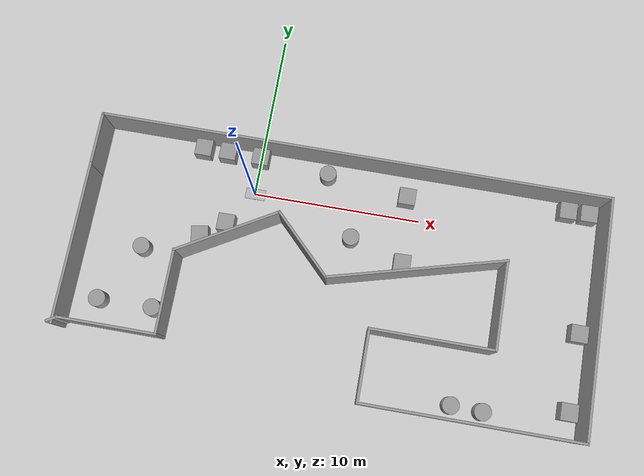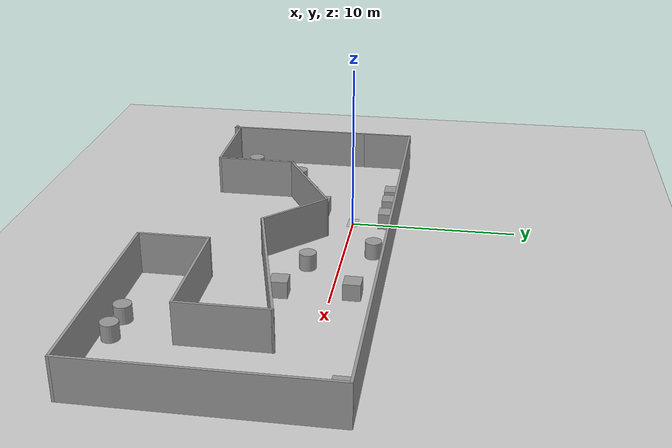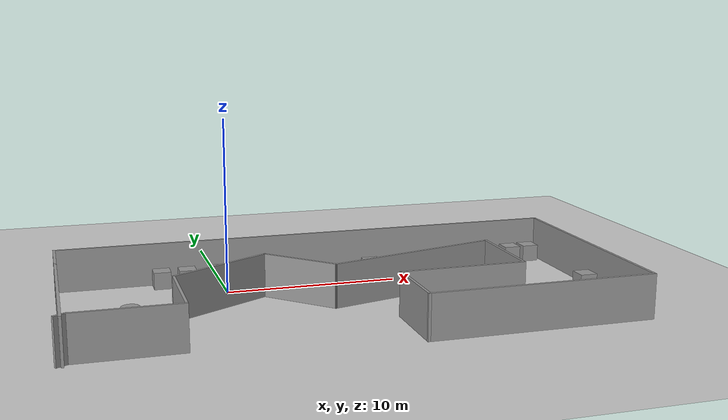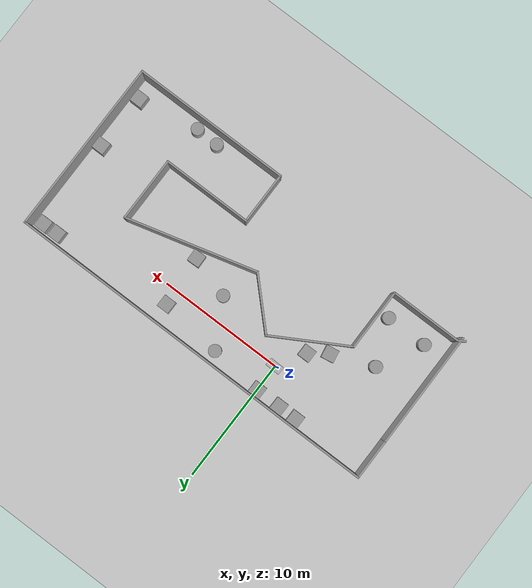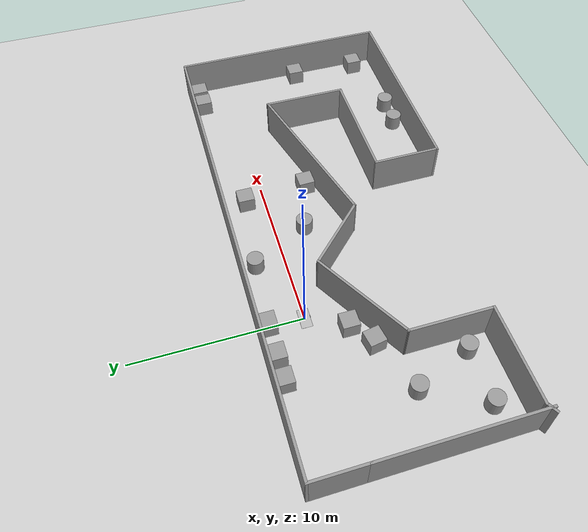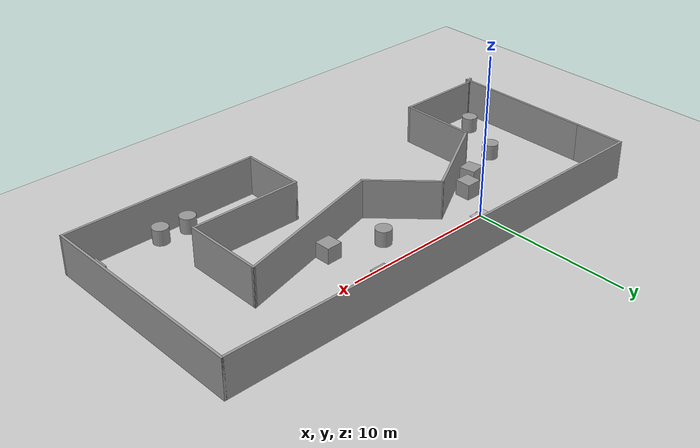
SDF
<sdf version="1.6">
 <world name="default">
  <light name="sun" type="directional">
   <pose>0 0 10 0 -0 0</pose>
   <diffuse>0.8 0.8 0.8 1</diffuse>
   <specular>0.2 0.2 0.2 1</specular>
   <attenuation>
    <range>1000</range>
    <constant>0.9</constant>
    <linear>0.01</linear>
    <quadratic>0.001</quadratic>
   </attenuation>
   <direction>-0.5 0.1 -0.9</direction>
  </light>
  <model name="ground_plane">
   <static>1</static>
   <link name="link">
    <collision name="collision">
     <geometry><plane><normal>0 0 1</normal><size>100 100</size></plane></geometry>
     <surface>
      <contact><collide_bitmask>65535</collide_bitmask></contact>
      <friction><ode><mu>100</mu><mu2>50</mu2></ode></friction>
     </surface>
    </collision>
    <visual name="visual">
     <cast_shadows>0</cast_shadows>
     <geometry><plane><normal>0 0 1</normal><size>100 100</size></plane></geometry>
     <material>
      <script><uri>file://media/materials/scripts/gazebo.material</uri><name>Gazebo/Grey</name></script>
     </material>
    </visual>
   </link>
  </model>
  <gravity>0 0 -9.8</gravity>
  <magnetic_field>6e-06 2.3e-05 -4.2e-05</magnetic_field>
  <atmosphere type="adiabatic"/>
  <physics name="default_physics" default="0" type="ode">
   <max_step_size>0.001</max_step_size>
   <real_time_factor>1</real_time_factor>
   <real_time_update_rate>1000</real_time_update_rate>
  </physics>
  <scene><ambient>0.4 0.4 0.4 1</ambient><background>0.7 0.7 0.7 1</background><shadows>1</shadows></scene>
  <audio><device>default</device></audio>
  <spherical_coordinates>
   <surface_model>EARTH_WGS84</surface_model>
   <latitude_deg>0</latitude_deg>
   <longitude_deg>0</longitude_deg>
   <elevation>0</elevation>
   <heading_deg>0</heading_deg>
  </spherical_coordinates>
  <model name="kbot">
   <link name="base_footprint">
    <inertial>
     <pose>0.00043 0 0.025563 0 -0 0</pose>
     <mass>30.2</mass>
     <inertia>
      <ixx>0.391147</ixx>
      <ixy>0</ixy>
      <ixz>-0.00109768</ixz>
      <iyy>1.59189</iyy>
      <iyz>0</iyz>
      <izz>1.20097</izz>
     </inertia>
    </inertial>
    <collision name="base_footprint_fixed_joint_lump__base_link_collision">
     <pose>0 0 0.075 0 -0 0</pose>
     <geometry><box><size>1.2 0.65 0.01</size></box></geometry>
    </collision>
    <collision name="base_footprint_fixed_joint_lump__sensor_laser_collision_1">
     <pose>0.065 0 0.11 0 -0 0</pose>
     <geometry><box><size>0.03 0.03 0.04</size></box></geometry>
    </collision>
    <visual name="base_footprint_visual"><geometry><box><size>0.001 0.001 0.001</size></box></geometry></visual>
    <visual name="base_footprint_fixed_joint_lump__base_link_visual_1">
     <pose>0 0 0.075 0 -0 0</pose>
     <geometry><box><size>1.2 0.65 0.01</size></box></geometry>
    </visual>
    <visual name="base_footprint_fixed_joint_lump__sensor_laser_visual_2">
     <pose>0.065 0 0.11 0 -0 0</pose>
     <geometry>
      <mesh>
       <scale>1 1 1</scale>
       <uri>/home/antonino/Desktop/chapter-02/src/kbot_description/meshes/hokuyo.dae</uri>
      </mesh>
     </geometry>
     <material><script><uri>__default__</uri><name>__default__</name></script></material>
    </visual>
    <sensor name="laser_sensor" type="ray">
     <visualize>1</visualize>
     <update_rate>40</update_rate>
     <ray>
      <scan>
       <horizontal>
        <samples>720</samples>
        <resolution>1</resolution>
        <min_angle>-3.14</min_angle>
        <max_angle>3.14</max_angle>
       </horizontal>
       <vertical><samples>1</samples><min_angle>0</min_angle><max_angle>0</max_angle></vertical>
      </scan>
      <range><min>0.75</min><max>30</max><resolution>0.01</resolution></range>
      <noise><type>gaussian</type><mean>0</mean><stddev>0.01</stddev></noise>
     </ray>
     <plugin name="laser_controller" filename="libgazebo_ros_laser.so">
      <topicName>/kbot/sensor_laser/scan</topicName>
      <frameName>sensor_laser</frameName>
      <robotNamespace>/</robotNamespace>
     </plugin>
     <pose>0.065 0 0.11 0 -0 0</pose>
    </sensor>
   </link>
   <link name="caster_wheel1">
    <pose>-0.5 0.2 0.04 0 -0 0</pose>
    <inertial>
     <mass>5</mass>
     <inertia><ixx>0.0018</ixx><ixy>0</ixy><ixz>0</ixz><iyy>0.0018</iyy><iyz>0</iyz><izz>0.0018</izz></inertia>
    </inertial>
    <collision name="caster_wheel1_collision">
     <geometry><sphere><radius>0.03</radius></sphere></geometry>
    </collision>
    <visual name="caster_wheel1_visual"><geometry><sphere><radius>0.03</radius></sphere></geometry></visual>
   </link>
   <joint name="caster_wheel_joint1" type="revolute">
    <child>caster_wheel1</child>
    <parent>base_footprint</parent>
    <axis>
     <xyz>1 0 0</xyz>
     <limit><lower>-1e+16</lower><upper>1e+16</upper></limit>
     <dynamics><spring_reference>0</spring_reference><spring_stiffness>0</spring_stiffness></dynamics>
     <use_parent_model_frame>1</use_parent_model_frame>
    </axis>
   </joint>
   <link name="caster_wheel2">
    <pose>-0.5 -0.2 0.04 0 -0 0</pose>
    <inertial>
     <mass>5</mass>
     <inertia><ixx>0.0018</ixx><ixy>0</ixy><ixz>0</ixz><iyy>0.0018</iyy><iyz>0</iyz><izz>0.0018</izz></inertia>
    </inertial>
    <collision name="caster_wheel2_collision">
     <geometry><sphere><radius>0.03</radius></sphere></geometry>
    </collision>
    <visual name="caster_wheel2_visual"><geometry><sphere><radius>0.03</radius></sphere></geometry></visual>
   </link>
   <joint name="caster_wheel_joint2" type="revolute">
    <child>caster_wheel2</child>
    <parent>base_footprint</parent>
    <axis>
     <xyz>1 0 0</xyz>
     <limit><lower>-1e+16</lower><upper>1e+16</upper></limit>
     <dynamics><spring_reference>0</spring_reference><spring_stiffness>0</spring_stiffness></dynamics>
     <use_parent_model_frame>1</use_parent_model_frame>
    </axis>
   </joint>
   <link name="caster_wheel3">
    <pose>0.5 0.2 0.04 0 -0 0</pose>
    <inertial>
     <mass>5</mass>
     <inertia><ixx>0.0018</ixx><ixy>0</ixy><ixz>0</ixz><iyy>0.0018</iyy><iyz>0</iyz><izz>0.0018</izz></inertia>
    </inertial>
    <collision name="caster_wheel3_collision">
     <geometry><sphere><radius>0.03</radius></sphere></geometry>
    </collision>
    <visual name="caster_wheel3_visual"><geometry><sphere><radius>0.03</radius></sphere></geometry></visual>
   </link>
   <joint name="caster_wheel_joint3" type="revolute">
    <child>caster_wheel3</child>
    <parent>base_footprint</parent>
    <axis>
     <xyz>1 0 0</xyz>
     <limit><lower>-1e+16</lower><upper>1e+16</upper></limit>
     <dynamics><spring_reference>0</spring_reference><spring_stiffness>0</spring_stiffness></dynamics>
     <use_parent_model_frame>1</use_parent_model_frame>
    </axis>
   </joint>
   <link name="caster_wheel4">
    <pose>0.5 -0.2 0.04 0 -0 0</pose>
    <inertial>
     <mass>5</mass>
     <inertia><ixx>0.0018</ixx><ixy>0</ixy><ixz>0</ixz><iyy>0.0018</iyy><iyz>0</iyz><izz>0.0018</izz></inertia>
    </inertial>
    <collision name="caster_wheel4_collision">
     <geometry><sphere><radius>0.03</radius></sphere></geometry>
    </collision>
    <visual name="caster_wheel4_visual"><geometry><sphere><radius>0.03</radius></sphere></geometry></visual>
   </link>
   <joint name="caster_wheel_joint4" type="revolute">
    <child>caster_wheel4</child>
    <parent>base_footprint</parent>
    <axis>
     <xyz>1 0 0</xyz>
     <limit><lower>-1e+16</lower><upper>1e+16</upper></limit>
     <dynamics><spring_reference>0</spring_reference><spring_stiffness>0</spring_stiffness></dynamics>
     <use_parent_model_frame>1</use_parent_model_frame>
    </axis>
   </joint>
   <link name="left_wheel">
    <pose>0.02 0.332 0.07 0 -0 0</pose>
    <inertial>
     <mass>10</mass>
     <inertia>
      <ixx>0.0122708</ixx>
      <ixy>0</ixy>
      <ixz>0</ixz>
      <iyy>0.0122708</iyy>
      <iyz>0</iyz>
      <izz>0.0245</izz>
     </inertia>
    </inertial>
    <collision name="left_wheel_collision">
     <pose>0 0 0 1.5708 -0 0</pose>
     <geometry><cylinder><length>0.005</length><radius>0.07</radius></cylinder></geometry>
    </collision>
    <visual name="left_wheel_visual">
     <pose>0 0 0 1.5708 -0 0</pose>
     <geometry><cylinder><length>0.005</length><radius>0.07</radius></cylinder></geometry>
    </visual>
   </link>
   <joint name="left_wheel_joint" type="revolute">
    <child>left_wheel</child>
    <parent>base_footprint</parent>
    <axis>
     <xyz>0 1 0</xyz>
     <limit><lower>-1e+16</lower><upper>1e+16</upper></limit>
     <dynamics><spring_reference>0</spring_reference><spring_stiffness>0</spring_stiffness></dynamics>
     <use_parent_model_frame>1</use_parent_model_frame>
    </axis>
   </joint>
   <link name="right_wheel">
    <pose>0.02 -0.332 0.07 0 -0 0</pose>
    <inertial>
     <mass>10</mass>
     <inertia>
      <ixx>0.0122708</ixx>
      <ixy>0</ixy>
      <ixz>0</ixz>
      <iyy>0.0122708</iyy>
      <iyz>0</iyz>
      <izz>0.0245</izz>
     </inertia>
    </inertial>
    <collision name="right_wheel_collision">
     <pose>0 0 0 1.5708 -0 0</pose>
     <geometry><cylinder><length>0.005</length><radius>0.07</radius></cylinder></geometry>
    </collision>
    <visual name="right_wheel_visual">
     <pose>0 0 0 1.5708 -0 0</pose>
     <geometry><cylinder><length>0.005</length><radius>0.07</radius></cylinder></geometry>
    </visual>
   </link>
   <joint name="right_wheel_joint" type="revolute">
    <child>right_wheel</child>
    <parent>base_footprint</parent>
    <axis>
     <xyz>0 1 0</xyz>
     <limit><lower>-1e+16</lower><upper>1e+16</upper></limit>
     <dynamics><spring_reference>0</spring_reference><spring_stiffness>0</spring_stiffness></dynamics>
     <use_parent_model_frame>1</use_parent_model_frame>
    </axis>
   </joint>
   <static>0</static>
   <plugin name="differential_drive_controller" filename="libgazebo_ros_diff_drive.so">
    <alwaysOn>0</alwaysOn>
    <legacyMode>0</legacyMode>
    <updateRate>20</updateRate>
    <leftJoint>left_wheel_joint</leftJoint>
    <rightJoint>right_wheel_joint</rightJoint>
    <wheelSeparation>0.15</wheelSeparation>
    <wheelDiameter>0.07* 2</wheelDiameter>
    <torque>20</torque>
    <commandTopic>/kbot/base_controller/cmd_vel</commandTopic>
    <odometryTopic>/kbot/base_controller/odom</odometryTopic>
    <odometryFrame>odom</odometryFrame>
    <robotBaseFrame>base_footprint</robotBaseFrame>
    <robotNamespace>/</robotNamespace>
   </plugin>
   <pose>0.002916 -0.000225 -0.000372 -0 -0.019243 -0.009656</pose>
  </model>
  <model name="closed_room">
   <pose>5.44915 -4.21955 0 0 -0 0</pose>
   <link name="Wall_1">
    <collision name="Wall_1_Collision">
     <geometry><box><size>9.5 0.15 2.5</size></box></geometry>
     <pose>0 0 1.25 0 -0 0</pose>
    </collision>
    <visual name="Wall_1_Visual">
     <pose>0 0 1.25 0 -0 0</pose>
     <geometry><box><size>9.5 0.15 2.5</size></box></geometry>
     <material>
      <script><uri>file://media/materials/scripts/gazebo.material</uri><name>Gazebo/Grey</name></script>
      <ambient>1 1 1 1</ambient>
     </material>
     <meta><layer>0</layer></meta>
    </visual>
    <pose>-14.9018 -0.85 0 0 -0 1.5708</pose>
   </link>
   <link name="Wall_10">
    <collision name="Wall_10_Collision">
     <geometry><box><size>10.5 0.15 2.5</size></box></geometry>
     <pose>0 0 1.25 0 -0 0</pose>
    </collision>
    <visual name="Wall_10_Visual">
     <pose>0 0 1.25 0 -0 0</pose>
     <geometry><box><size>10.5 0.15 2.5</size></box></geometry>
     <material>
      <script><uri>file://media/materials/scripts/gazebo.material</uri><name>Gazebo/Grey</name></script>
      <ambient>1 1 1 1</ambient>
     </material>
     <meta><layer>0</layer></meta>
    </visual>
    <pose>4.69951 0.935611 0 0 -0 -2.87979</pose>
   </link>
   <link name="Wall_11">
    <collision name="Wall_11_Collision">
     <geometry><box><size>4.75 0.15 2.5</size></box></geometry>
     <pose>0 0 1.25 0 -0 0</pose>
    </collision>
    <visual name="Wall_11_Visual">
     <pose>0 0 1.25 0 -0 0</pose>
     <geometry><box><size>4.75 0.15 2.5</size></box></geometry>
     <material>
      <script><uri>file://media/materials/scripts/gazebo.material</uri><name>Gazebo/Grey</name></script>
      <ambient>1 1 1 1</ambient>
     </material>
     <meta><layer>0</layer></meta>
    </visual>
    <pose>-1.9255 1.22257 0 0 -0 2.35619</pose>
   </link>
   <link name="Wall_12">
    <collision name="Wall_12_Collision">
     <geometry><box><size>6.5 0.15 2.5</size></box></geometry>
     <pose>0 0 1.25 0 -0 0</pose>
    </collision>
    <visual name="Wall_12_Visual">
     <pose>0 0 1.25 0 -0 0</pose>
     <geometry><box><size>6.5 0.15 2.5</size></box></geometry>
     <material>
      <script><uri>file://media/materials/scripts/gazebo.material</uri><name>Gazebo/Grey</name></script>
      <ambient>1 1 1 1</ambient>
     </material>
     <meta><layer>0</layer></meta>
    </visual>
    <pose>-6.30148 1.26141 0 0 -0 -2.61799</pose>
   </link>
   <link name="Wall_13">
    <collision name="Wall_13_Collision">
     <geometry><box><size>5 0.15 2.5</size></box></geometry>
     <pose>0 0 1.25 0 -0 0</pose>
    </collision>
    <visual name="Wall_13_Visual">
     <pose>0 0 1.25 0 -0 0</pose>
     <geometry><box><size>5 0.15 2.5</size></box></geometry>
     <material>
      <script><uri>file://media/materials/scripts/gazebo.material</uri><name>Gazebo/Grey</name></script>
      <ambient>1 1 1 1</ambient>
     </material>
     <meta><layer>0</layer></meta>
    </visual>
    <pose>-9.05111 -2.75109 0 0 -0 -1.5708</pose>
   </link>
   <link name="Wall_14">
    <collision name="Wall_14_Collision">
     <geometry><box><size>5.75 0.15 2.5</size></box></geometry>
     <pose>0 0 1.25 0 -0 0</pose>
    </collision>
    <visual name="Wall_14_Visual">
     <pose>0 0 1.25 0 -0 0</pose>
     <geometry><box><size>5.75 0.15 2.5</size></box></geometry>
     <material>
      <script><uri>file://media/materials/scripts/gazebo.material</uri><name>Gazebo/Grey</name></script>
      <ambient>1 1 1 1</ambient>
     </material>
     <meta><layer>0</layer></meta>
    </visual>
    <pose>-11.8511 -5.17609 0 0 -0 3.14159</pose>
   </link>
   <link name="Wall_15">
    <collision name="Wall_15_Collision">
     <geometry><box><size>0.75 0.15 2.5</size></box></geometry>
     <pose>0 0 1.25 0 -0 0</pose>
    </collision>
    <visual name="Wall_15_Visual">
     <pose>0 0 1.25 0 -0 0</pose>
     <geometry><box><size>0.75 0.15 2.5</size></box></geometry>
     <material>
      <script><uri>file://media/materials/scripts/gazebo.material</uri><name>Gazebo/Grey</name></script>
      <ambient>1 1 1 1</ambient>
     </material>
     <meta><layer>0</layer></meta>
    </visual>
    <pose>-14.9109 -5.32609 0 0 -0 -2.61799</pose>
   </link>
   <link name="Wall_2">
    <collision name="Wall_2_Collision">
     <geometry><box><size>3.25 0.15 2.5</size></box></geometry>
     <pose>0 0 1.25 0 -0 0</pose>
    </collision>
    <visual name="Wall_2_Visual">
     <pose>0 0 1.25 0 -0 0</pose>
     <geometry><box><size>3.25 0.15 2.5</size></box></geometry>
     <material>
      <script><uri>file://media/materials/scripts/gazebo.material</uri><name>Gazebo/Grey</name></script>
      <ambient>1 1 1 1</ambient>
     </material>
     <meta><layer>0</layer></meta>
    </visual>
    <pose>-14.9018 5.375 0 0 -0 1.5708</pose>
   </link>
   <link name="Wall_3">
    <collision name="Wall_3_Collision">
     <geometry><box><size>30.25 0.15 2.5</size></box></geometry>
     <pose>0 0 1.25 0 -0 0</pose>
    </collision>
    <visual name="Wall_3_Visual">
     <pose>0 0 1.25 0 -0 0</pose>
     <geometry><box><size>30.25 0.15 2.5</size></box></geometry>
     <material>
      <script><uri>file://media/materials/scripts/gazebo.material</uri><name>Gazebo/Grey</name></script>
      <ambient>1 1 1 1</ambient>
     </material>
     <meta><layer>0</layer></meta>
    </visual>
    <pose>0.148175 6.925 0 0 -0 0</pose>
   </link>
   <link name="Wall_5">
    <collision name="Wall_5_Collision">
     <geometry><box><size>14 0.15 2.5</size></box></geometry>
     <pose>0 0 1.25 0 -0 0</pose>
    </collision>
    <visual name="Wall_5_Visual">
     <pose>0 0 1.25 0 -0 0</pose>
     <geometry><box><size>14 0.15 2.5</size></box></geometry>
     <material>
      <script><uri>file://media/materials/scripts/gazebo.material</uri><name>Gazebo/Grey</name></script>
      <ambient>1 1 1 1</ambient>
     </material>
     <meta><layer>0</layer></meta>
    </visual>
    <pose>15.1982 0 0 0 -0 -1.5708</pose>
   </link>
   <link name="Wall_6">
    <collision name="Wall_6_Collision">
     <geometry><box><size>12.75 0.15 2.5</size></box></geometry>
     <pose>0 0 1.25 0 -0 0</pose>
    </collision>
    <visual name="Wall_6_Visual">
     <pose>0 0 1.25 0 -0 0</pose>
     <geometry><box><size>12.75 0.15 2.5</size></box></geometry>
     <material>
      <script><uri>file://media/materials/scripts/gazebo.material</uri><name>Gazebo/Grey</name></script>
      <ambient>1 1 1 1</ambient>
     </material>
     <meta><layer>0</layer></meta>
    </visual>
    <pose>8.89818 -6.925 0 0 -0 3.14159</pose>
   </link>
   <link name="Wall_7">
    <collision name="Wall_7_Collision">
     <geometry><box><size>4.25 0.15 2.5</size></box></geometry>
     <pose>0 0 1.25 0 -0 0</pose>
    </collision>
    <visual name="Wall_7_Visual">
     <pose>0 0 1.25 0 -0 0</pose>
     <geometry><box><size>4.25 0.15 2.5</size></box></geometry>
     <material>
      <script><uri>file://media/materials/scripts/gazebo.material</uri><name>Gazebo/Grey</name></script>
      <ambient>1 1 1 1</ambient>
     </material>
     <meta><layer>0</layer></meta>
    </visual>
    <pose>2.59818 -4.875 0 0 -0 1.5708</pose>
   </link>
   <link name="Wall_8">
    <collision name="Wall_8_Collision">
     <geometry><box><size>7.25 0.15 2.5</size></box></geometry>
     <pose>0 0 1.25 0 -0 0</pose>
    </collision>
    <visual name="Wall_8_Visual">
     <pose>0 0 1.25 0 -0 0</pose>
     <geometry><box><size>7.25 0.15 2.5</size></box></geometry>
     <material>
      <script><uri>file://media/materials/scripts/gazebo.material</uri><name>Gazebo/Grey</name></script>
      <ambient>1 1 1 1</ambient>
     </material>
     <meta><layer>0</layer></meta>
    </visual>
    <pose>6.14818 -2.825 0 0 -0 0</pose>
   </link>
   <link name="Wall_9">
    <collision name="Wall_9_Collision">
     <geometry><box><size>5.25 0.15 2.5</size></box></geometry>
     <pose>0 0 1.25 0 -0 0</pose>
    </collision>
    <visual name="Wall_9_Visual">
     <pose>0 0 1.25 0 -0 0</pose>
     <geometry><box><size>5.25 0.15 2.5</size></box></geometry>
     <material>
      <script><uri>file://media/materials/scripts/gazebo.material</uri><name>Gazebo/Grey</name></script>
      <ambient>1 1 1 1</ambient>
     </material>
     <meta><layer>0</layer></meta>
    </visual>
    <pose>9.69818 -0.275 0 0 -0 1.5708</pose>
   </link>
   <static>1</static>
  </model>
  <model name="unit_box">
   <pose>-3.49047 2.1275 0.499995 -1e-05 -0 -0</pose>
   <link name="link">
    <inertial>
     <mass>1</mass>
     <inertia>
      <ixx>0.166667</ixx>
      <ixy>0</ixy>
      <ixz>0</ixz>
      <iyy>0.166667</iyy>
      <iyz>0</iyz>
      <izz>0.166667</izz>
     </inertia>
    </inertial>
    <collision name="collision"><geometry><box><size>1 1 1</size></box></geometry></collision>
    <visual name="visual">
     <geometry><box><size>1 1 1</size></box></geometry>
     <material>
      <script><name>Gazebo/Grey</name><uri>file://media/materials/scripts/gazebo.material</uri></script>
     </material>
    </visual>
   </link>
  </model>
  <model name="unit_box_0">
   <pose>-1.99527 2.13045 0.499999 -2e-06 -0 0</pose>
   <link name="link">
    <inertial>
     <mass>1</mass>
     <inertia>
      <ixx>0.166667</ixx>
      <ixy>0</ixy>
      <ixz>0</ixz>
      <iyy>0.166667</iyy>
      <iyz>0</iyz>
      <izz>0.166667</izz>
     </inertia>
    </inertial>
    <collision name="collision"><geometry><box><size>1 1 1</size></box></geometry></collision>
    <visual name="visual">
     <geometry><box><size>1 1 1</size></box></geometry>
     <material>
      <script><name>Gazebo/Grey</name><uri>file://media/materials/scripts/gazebo.material</uri></script>
     </material>
    </visual>
   </link>
  </model>
  <model name="unit_box_1">
   <pose>-0.007547 2.13044 0.499995 1e-05 -0 0</pose>
   <link name="link">
    <inertial>
     <mass>1</mass>
     <inertia>
      <ixx>0.166667</ixx>
      <ixy>0</ixy>
      <ixz>0</ixz>
      <iyy>0.166667</iyy>
      <iyz>0</iyz>
      <izz>0.166667</izz>
     </inertia>
    </inertial>
    <collision name="collision"><geometry><box><size>1 1 1</size></box></geometry></collision>
    <visual name="visual">
     <geometry><box><size>1 1 1</size></box></geometry>
     <material>
      <script><name>Gazebo/Grey</name><uri>file://media/materials/scripts/gazebo.material</uri></script>
     </material>
    </visual>
   </link>
  </model>
  <model name="unit_box_2">
   <pose>9.05246 1.20263 0.499995 0 1e-05 0</pose>
   <link name="link">
    <inertial>
     <mass>1</mass>
     <inertia>
      <ixx>0.166667</ixx>
      <ixy>0</ixy>
      <ixz>0</ixz>
      <iyy>0.166667</iyy>
      <iyz>0</iyz>
      <izz>0.166667</izz>
     </inertia>
    </inertial>
    <collision name="collision"><geometry><box><size>1 1 1</size></box></geometry></collision>
    <visual name="visual">
     <geometry><box><size>1 1 1</size></box></geometry>
     <material>
      <script><name>Gazebo/Grey</name><uri>file://media/materials/scripts/gazebo.material</uri></script>
     </material>
    </visual>
   </link>
  </model>
  <model name="unit_box_3">
   <pose>9.35261 -2.79508 0.499995 -1e-05 -0 0.025881</pose>
   <link name="link">
    <inertial>
     <mass>1</mass>
     <inertia>
      <ixx>0.166667</ixx>
      <ixy>0</ixy>
      <ixz>0</ixz>
      <iyy>0.166667</iyy>
      <iyz>0</iyz>
      <izz>0.166667</izz>
     </inertia>
    </inertial>
    <collision name="collision"><geometry><box><size>1 1 1</size></box></geometry></collision>
    <visual name="visual">
     <geometry><box><size>1 1 1</size></box></geometry>
     <material>
      <script><name>Gazebo/Grey</name><uri>file://media/materials/scripts/gazebo.material</uri></script>
     </material>
    </visual>
   </link>
  </model>
  <model name="unit_cylinder">
   <pose>4.16548 1.76835 0.499992 -3e-06 3e-06 0</pose>
   <link name="link">
    <inertial>
     <mass>1</mass>
     <inertia><ixx>0.145833</ixx><ixy>0</ixy><ixz>0</ixz><iyy>0.145833</iyy><iyz>0</iyz><izz>0.125</izz></inertia>
    </inertial>
    <collision name="collision">
     <geometry><cylinder><radius>0.5</radius><length>1</length></cylinder></geometry>
    </collision>
    <visual name="visual">
     <geometry><cylinder><radius>0.5</radius><length>1</length></cylinder></geometry>
     <material>
      <script><name>Gazebo/Grey</name><uri>file://media/materials/scripts/gazebo.material</uri></script>
     </material>
    </visual>
   </link>
  </model>
  <model name="unit_cylinder_0">
   <pose>6.13978 -1.79934 0.499998 3e-06 -3e-06 0</pose>
   <link name="link">
    <inertial>
     <mass>1</mass>
     <inertia><ixx>0.145833</ixx><ixy>0</ixy><ixz>0</ixz><iyy>0.145833</iyy><iyz>0</iyz><izz>0.125</izz></inertia>
    </inertial>
    <collision name="collision">
     <geometry><cylinder><radius>0.5</radius><length>1</length></cylinder></geometry>
    </collision>
    <visual name="visual">
     <geometry><cylinder><radius>0.5</radius><length>1</length></cylinder></geometry>
     <material>
      <script><name>Gazebo/Grey</name><uri>file://media/materials/scripts/gazebo.material</uri></script>
     </material>
    </visual>
   </link>
  </model>
  <model name="unit_box_4">
   <pose>-2.64653 -3.15417 0.499999 2e-06 0 0.167353</pose>
   <link name="link">
    <inertial>
     <mass>1</mass>
     <inertia>
      <ixx>0.166667</ixx>
      <ixy>0</ixy>
      <ixz>0</ixz>
      <iyy>0.166667</iyy>
      <iyz>0</iyz>
      <izz>0.166667</izz>
     </inertia>
    </inertial>
    <collision name="collision"><geometry><box><size>1 1 1</size></box></geometry></collision>
    <visual name="visual">
     <geometry><box><size>1 1 1</size></box></geometry>
     <material>
      <script><name>Gazebo/Grey</name><uri>file://media/materials/scripts/gazebo.material</uri></script>
     </material>
    </visual>
   </link>
  </model>
  <model name="unit_box_5">
   <pose>-1.27922 -2.17816 0.499995 -1e-05 -0 -0</pose>
   <link name="link">
    <inertial>
     <mass>1</mass>
     <inertia>
      <ixx>0.166667</ixx>
      <ixy>0</ixy>
      <ixz>0</ixz>
      <iyy>0.166667</iyy>
      <iyz>0</iyz>
      <izz>0.166667</izz>
     </inertia>
    </inertial>
    <collision name="collision"><geometry><box><size>1 1 1</size></box></geometry></collision>
    <visual name="visual">
     <geometry><box><size>1 1 1</size></box></geometry>
     <material>
      <script><name>Gazebo/Grey</name><uri>file://media/materials/scripts/gazebo.material</uri></script>
     </material>
    </visual>
   </link>
  </model>
  <model name="unit_cylinder_1">
   <pose>-4.47891 -7.84554 0.499992 -3e-06 3e-06 0</pose>
   <link name="link">
    <inertial>
     <mass>1</mass>
     <inertia><ixx>0.145833</ixx><ixy>0</ixy><ixz>0</ixz><iyy>0.145833</iyy><iyz>0</iyz><izz>0.125</izz></inertia>
    </inertial>
    <collision name="collision">
     <geometry><cylinder><radius>0.5</radius><length>1</length></cylinder></geometry>
    </collision>
    <visual name="visual">
     <geometry><cylinder><radius>0.5</radius><length>1</length></cylinder></geometry>
     <material>
      <script><name>Gazebo/Grey</name><uri>file://media/materials/scripts/gazebo.material</uri></script>
     </material>
    </visual>
   </link>
  </model>
  <model name="unit_cylinder_2">
   <pose>-7.7165 -7.85837 0.499998 3e-06 -4e-06 0</pose>
   <link name="link">
    <inertial>
     <mass>1</mass>
     <inertia><ixx>0.145833</ixx><ixy>0</ixy><ixz>0</ixz><iyy>0.145833</iyy><iyz>0</iyz><izz>0.125</izz></inertia>
    </inertial>
    <collision name="collision">
     <geometry><cylinder><radius>0.5</radius><length>1</length></cylinder></geometry>
    </collision>
    <visual name="visual">
     <geometry><cylinder><radius>0.5</radius><length>1</length></cylinder></geometry>
     <material>
      <script><name>Gazebo/Grey</name><uri>file://media/materials/scripts/gazebo.material</uri></script>
     </material>
    </visual>
   </link>
  </model>
  <model name="unit_cylinder_3">
   <pose>-5.86795 -4.42511 0.499992 -3e-06 4e-06 0</pose>
   <link name="link">
    <inertial>
     <mass>1</mass>
     <inertia><ixx>0.145833</ixx><ixy>0</ixy><ixz>0</ixz><iyy>0.145833</iyy><iyz>0</iyz><izz>0.125</izz></inertia>
    </inertial>
    <collision name="collision">
     <geometry><cylinder><radius>0.5</radius><length>1</length></cylinder></geometry>
    </collision>
    <visual name="visual">
     <geometry><cylinder><radius>0.5</radius><length>1</length></cylinder></geometry>
     <material>
      <script><name>Gazebo/Grey</name><uri>file://media/materials/scripts/gazebo.material</uri></script>
     </material>
    </visual>
   </link>
  </model>
  <model name="unit_box_6">
   <pose>19.8249 1.99839 0.499995 -1e-05 -0 -0</pose>
   <link name="link">
    <inertial>
     <mass>1</mass>
     <inertia>
      <ixx>0.166667</ixx>
      <ixy>0</ixy>
      <ixz>0</ixz>
      <iyy>0.166667</iyy>
      <iyz>0</iyz>
      <izz>0.166667</izz>
     </inertia>
    </inertial>
    <collision name="collision"><geometry><box><size>1 1 1</size></box></geometry></collision>
    <visual name="visual">
     <geometry><box><size>1 1 1</size></box></geometry>
     <material>
      <script><name>Gazebo/Grey</name><uri>file://media/materials/scripts/gazebo.material</uri></script>
     </material>
    </visual>
   </link>
  </model>
  <model name="unit_box_7">
   <pose>18.5872 1.97687 0.499995 0 1e-05 0</pose>
   <link name="link">
    <inertial>
     <mass>1</mass>
     <inertia>
      <ixx>0.166667</ixx>
      <ixy>0</ixy>
      <ixz>0</ixz>
      <iyy>0.166667</iyy>
      <iyz>0</iyz>
      <izz>0.166667</izz>
     </inertia>
    </inertial>
    <collision name="collision"><geometry><box><size>1 1 1</size></box></geometry></collision>
    <visual name="visual">
     <geometry><box><size>1 1 1</size></box></geometry>
     <material>
      <script><name>Gazebo/Grey</name><uri>file://media/materials/scripts/gazebo.material</uri></script>
     </material>
    </visual>
   </link>
  </model>
  <model name="unit_box_8">
   <pose>19.9961 -5.13818 0.499995 -1e-05 -0 -0</pose>
   <link name="link">
    <inertial>
     <mass>1</mass>
     <inertia>
      <ixx>0.166667</ixx>
      <ixy>0</ixy>
      <ixz>0</ixz>
      <iyy>0.166667</iyy>
      <iyz>0</iyz>
      <izz>0.166667</izz>
     </inertia>
    </inertial>
    <collision name="collision"><geometry><box><size>1 1 1</size></box></geometry></collision>
    <visual name="visual">
     <geometry><box><size>1 1 1</size></box></geometry>
     <material>
      <script><name>Gazebo/Grey</name><uri>file://media/materials/scripts/gazebo.material</uri></script>
     </material>
    </visual>
   </link>
  </model>
  <model name="unit_cylinder_4">
   <pose>15.1084 -10.4148 0.499997 3e-06 4e-06 -0</pose>
   <link name="link">
    <inertial>
     <mass>1</mass>
     <inertia><ixx>0.145833</ixx><ixy>0</ixy><ixz>0</ixz><iyy>0.145833</iyy><iyz>0</iyz><izz>0.125</izz></inertia>
    </inertial>
    <collision name="collision">
     <geometry><cylinder><radius>0.5</radius><length>1</length></cylinder></geometry>
    </collision>
    <visual name="visual">
     <geometry><cylinder><radius>0.5</radius><length>1</length></cylinder></geometry>
     <material>
      <script><name>Gazebo/Grey</name><uri>file://media/materials/scripts/gazebo.material</uri></script>
     </material>
    </visual>
   </link>
  </model>
  <model name="unit_cylinder_5">
   <pose>13.2863 -10.3591 0.499993 -3e-06 -4e-06 -0</pose>
   <link name="link">
    <inertial>
     <mass>1</mass>
     <inertia><ixx>0.145833</ixx><ixy>0</ixy><ixz>0</ixz><iyy>0.145833</iyy><iyz>0</iyz><izz>0.125</izz></inertia>
    </inertial>
    <collision name="collision">
     <geometry><cylinder><radius>0.5</radius><length>1</length></cylinder></geometry>
    </collision>
    <visual name="visual">
     <geometry><cylinder><radius>0.5</radius><length>1</length></cylinder></geometry>
     <material>
      <script><name>Gazebo/Grey</name><uri>file://media/materials/scripts/gazebo.material</uri></script>
     </material>
    </visual>
   </link>
  </model>
  <model name="unit_box_9">
   <pose>19.9006 -9.59175 0.5 0 -0 0</pose>
   <link name="link">
    <inertial>
     <mass>1</mass>
     <inertia>
      <ixx>0.166667</ixx>
      <ixy>0</ixy>
      <ixz>0</ixz>
      <iyy>0.166667</iyy>
      <iyz>0</iyz>
      <izz>0.166667</izz>
     </inertia>
    </inertial>
    <collision name="collision"><geometry><box><size>1 1 1</size></box></geometry></collision>
    <visual name="visual">
     <geometry><box><size>1 1 1</size></box></geometry>
     <material>
      <script><name>Gazebo/Grey</name><uri>file://media/materials/scripts/gazebo.material</uri></script>
     </material>
    </visual>
   </link>
  </model>
 </world>
</sdf>
